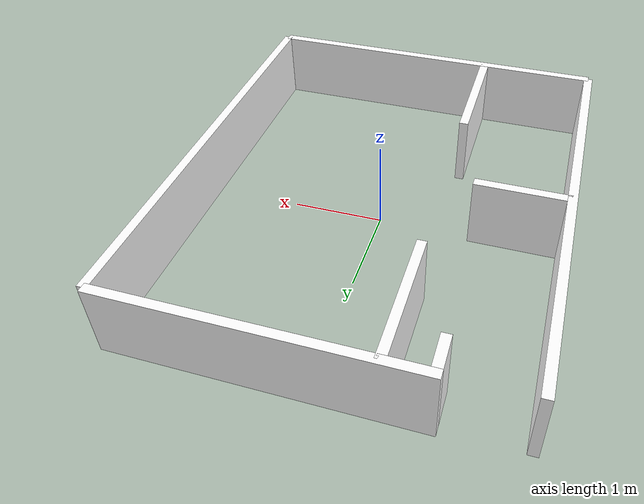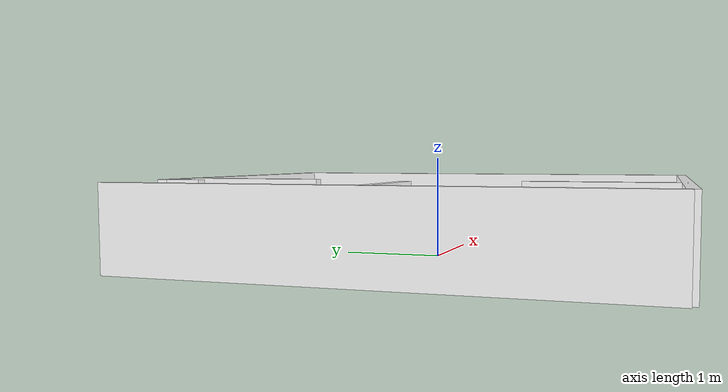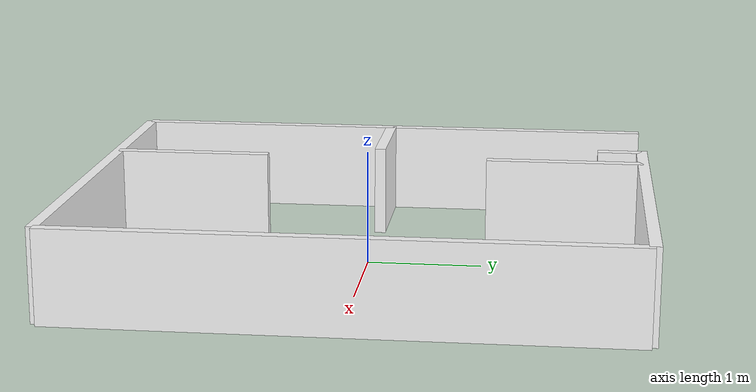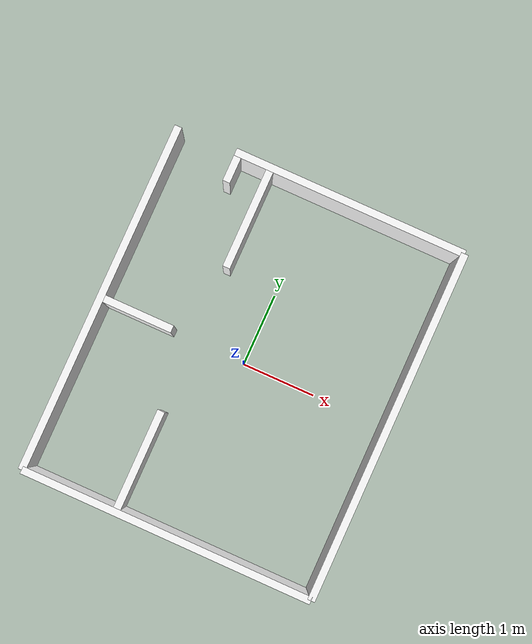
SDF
<?xml version="1.0" ?>
<sdf version="1.8">
  <model name="rcso2025_winter_arena_frame">
    <static>true</static>
    <link name="link">
      <inertial>
        <mass>1.0</mass>
      </inertial>

      <collision name="wall_front">
        <pose>-2.0 0.0 0.4 0.0 0.0 0.0</pose>
        <geometry>
          <box>
            <size>0.1 4.8 0.8</size>
          </box>
        </geometry>
      </collision>

      <visual name="wall_front_v">
        <pose>-2.0 0.0 0.4 0.0 0.0 0.0</pose>
        <geometry>
          <box>
            <size>0.1 4.8 0.8</size>
          </box>
        </geometry>

        <material>
          <diffuse>1.0 1.0 1.0 1.0</diffuse>
          <specular>1.0 1.0 1.0 1.0</specular>
        </material>
      </visual>

      <collision name="wall_side_right">
        <pose>0.0 -2.4 0.4 0.0 0.0 1.57</pose>
        <geometry>
          <box>
            <size>0.1 4.0 0.8</size>
          </box>
        </geometry>
      </collision>

      <visual name="wall_side_right_v">
        <pose>0.0 -2.4 0.4 0.0 0.0 1.57</pose>
        <geometry>
          <box>
            <size>0.1 4.0 0.8</size>
          </box>
        </geometry>

        <material>
          <diffuse>1.0 1.0 1.0 1.0</diffuse>
          <specular>1.0 1.0 1.0 1.0</specular>
        </material>
      </visual>

      <collision name="wall_side_left">
        <pose>0.4 2.4 0.4 0.0 0.0 1.57</pose>
        <geometry>
          <box>
            <size>0.1 3.2 0.8</size>
          </box>
        </geometry>
      </collision>

      <visual name="wall_side_left_v">
        <pose>0.4 2.4 0.4 0.0 0.0 1.57</pose>
        <geometry>
          <box>
            <size>0.1 3.2 0.8</size>
          </box>
        </geometry>

        <material>
          <diffuse>1.0 1.0 1.0 1.0</diffuse>
          <specular>1.0 1.0 1.0 1.0</specular>
        </material>
      </visual>

      <collision name="wall_back">
        <pose>2.0 0.0 0.4 0.0 0.0 0.0</pose>
        <geometry>
          <box>
            <size>0.1 4.8 0.8</size>
          </box>
        </geometry>
      </collision>

      <visual name="wall_back_v">
        <pose>2.0 0.0 0.4 0.0 0.0 0.0</pose>
        <geometry>
          <box>
            <size>0.1 4.8 0.8</size>
          </box>
        </geometry>

        <material>
          <diffuse>1.0 1.0 1.0 1.0</diffuse>
          <specular>1.0 1.0 1.0 1.0</specular>
        </material>
      </visual>

      <collision name="inside_wall_side_right">
        <pose>-0.7 -1.7 0.4 0.0 0.0 0.0</pose>
        <geometry>
          <box>
            <size>0.1 1.4 0.8</size>
          </box>
        </geometry>
      </collision>

      <visual name="inside_wall_side_right_v">
        <pose>-0.7 -1.7 0.4 0.0 0.0 0.0</pose>
        <geometry>
          <box>
            <size>0.1 1.4 0.8</size>
          </box>
        </geometry>

        <material>
          <diffuse>1.0 1.0 1.0 1.0</diffuse>
          <specular>1.0 1.0 1.0 1.0</specular>
        </material>
      </visual>

      <collision name="inside_wall_side_left">
        <pose>-0.7 1.7 0.4 0.0 0.0 0.0</pose>
        <geometry>
          <box>
            <size>0.1 1.4 0.8</size>
          </box>
        </geometry>
      </collision>

      <visual name="inside_wall_side_left_v">
        <pose>-0.7 1.7 0.4 0.0 0.0 0.0</pose>
        <geometry>
          <box>
            <size>0.1 1.4 0.8</size>
          </box>
        </geometry>

        <material>
          <diffuse>1.0 1.0 1.0 1.0</diffuse>
          <specular>1.0 1.0 1.0 1.0</specular>
        </material>
      </visual>

      <collision name="inside_wall_side_left_2">
        <pose>-1.15 2.2 0.4 0.0 0.0 0.0</pose>
        <geometry>
          <box>
            <size>0.1 0.4 0.8</size>
          </box>
        </geometry>
      </collision>

      <visual name="inside_wall_side_left_2_v">
        <pose>-1.15 2.2 0.4 0.0 0.0 0.0</pose>
        <geometry>
          <box>
            <size>0.1 0.4 0.8</size>
          </box>
        </geometry>

        <material>
          <diffuse>1.0 1.0 1.0 1.0</diffuse>
          <specular>1.0 1.0 1.0 1.0</specular>
        </material>
      </visual>

      <collision name="inside_wall_front">
        <pose>-1.5 0.0 0.4 0.0 0.0 1.57</pose>
        <geometry>
          <box>
            <size>0.1 1.0 0.8</size>
          </box>
        </geometry>
      </collision>

      <visual name="inside_wall_front_v">
        <pose>-1.5 0.0 0.4 0.0 0.0 1.57</pose>
        <geometry>
          <box>
            <size>0.1 1.0 0.8</size>
          </box>
        </geometry>

        <material>
          <diffuse>1.0 1.0 1.0 1.0</diffuse>
          <specular>1.0 1.0 1.0 1.0</specular>
        </material>
      </visual>
    </link>
  </model>
</sdf>
